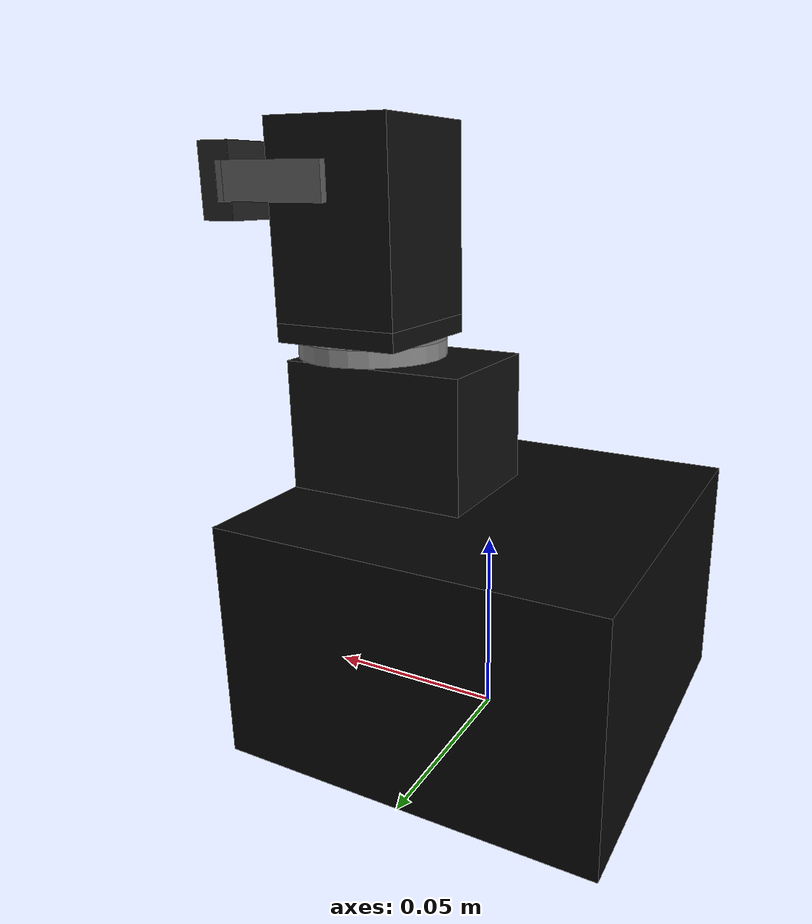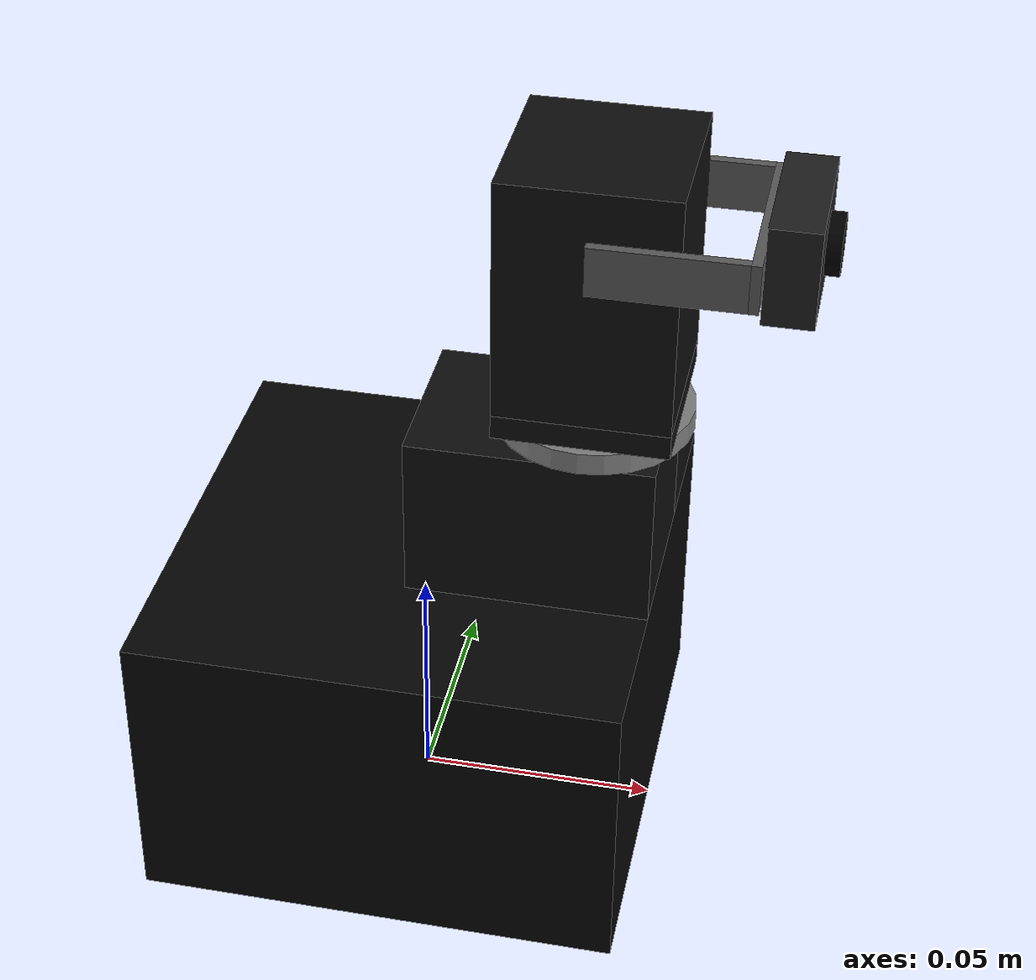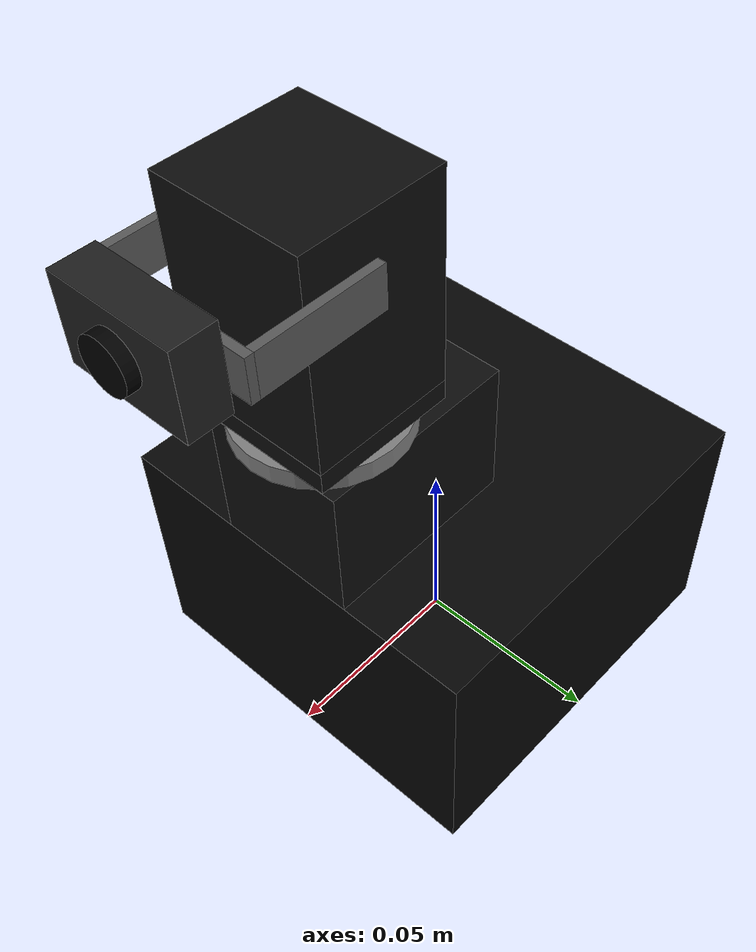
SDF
<?xml version="1.0" ?>
<sdf version="1.10">
  <model name="pantilt">

    <pose>0 0 0 0 0 0</pose>
    <static>false</static>

    <!-- Fix the base to the world so the model doesn't fall under gravity.
         base_link is anchored; pan_joint and tilt_joint still rotate freely. -->
    <joint name="world_fixed" type="fixed">
      <parent>world</parent>
      <child>base_link</child>
    </joint>

    <link name="base_link">
      <inertial>
        <mass>0.6</mass>
        <inertia>
          <ixx>0.000582</ixx><ixy>0</ixy><ixz>0</ixz>
          <iyy>0.000582</iyy><iyz>0</iyz>
          <izz>0.000833</izz>
        </inertia>
      </inertial>

      <!-- Base: 100 x 100 x 63 mm, center at (0, 0, 31.5 mm) -->
      <visual name="base_visual">
        <pose>0 0 0.0315 0 0 0</pose>
        <geometry>
          <box><size>0.100 0.100 0.063</size></box>
        </geometry>
        <material>
          <!-- Glossy black -->
          <ambient>0.02 0.02 0.02 1</ambient>
          <diffuse>0.02 0.02 0.02 1</diffuse>
          <specular>0.8 0.8 0.8 1</specular>
        </material>
      </visual>
      <collision name="base_collision">
        <pose>0 0 0.0315 0 0 0</pose>
        <geometry>
          <box><size>0.100 0.100 0.063</size></box>
        </geometry>
      </collision>

      <!-- Pan servo body: 50(X) x 36(Y) x 35(Z) mm
           Front face flush with base front at X=+50mm → center at X=+25mm
           Sits on top of base: Z center = 63 + 35/2 = 80.5 mm -->
      <visual name="pan_servo_visual">
        <pose>0.025 0 0.0805 0 0 0</pose>
        <geometry>
          <box><size>0.050 0.036 0.035</size></box>
        </geometry>
        <material>
          <!-- Matte black -->
          <ambient>0.05 0.05 0.05 1</ambient>
          <diffuse>0.05 0.05 0.05 1</diffuse>
          <specular>0.08 0.08 0.08 1</specular>
        </material>
      </visual>
      <collision name="pan_servo_collision">
        <pose>0.025 0 0.0805 0 0 0</pose>
        <geometry>
          <box><size>0.050 0.036 0.035</size></box>
        </geometry>
      </collision>
    </link>

    <joint name="pan_joint" type="revolute">
      <pose relative_to="base_link">0.035 0 0.098 0 0 0</pose>
      <parent>base_link</parent>
      <child>pan_link</child>
      <axis>
        <xyz>0 0 1</xyz>
        <limit>
          <lower>-3.14159</lower>
          <upper>3.14159</upper>
        </limit>
        <dynamics>
          <damping>0.05</damping>
        </dynamics>
      </axis>
    </joint>

    <link name="pan_link">
      <pose relative_to="pan_joint">0 0 0 0 0 0</pose>
      <inertial>
        <mass>0.07</mass>
        <inertia>
          <ixx>0.000020</ixx><ixy>0</ixy><ixz>0</ixz>
          <iyy>0.000020</iyy><iyz>0</iyz>
          <izz>0.000012</izz>
        </inertia>
      </inertial>

      <!-- Washer stack: 3 x Ø40mm x 1.5mm = 4.5mm total height
           Modeled as one cylinder sitting directly on the pan horn (Z=0 in link frame).
           Center at Z = +2.25mm -->
      <visual name="washer_visual">
        <pose>0 0 0.00225 0 0 0</pose>
        <geometry>
          <cylinder>
            <radius>0.020</radius>
            <length>0.0045</length>
          </cylinder>
        </geometry>
        <material>
          <!-- Metallic silver -->
          <ambient>0.4 0.4 0.4 1</ambient>
          <diffuse>0.5 0.5 0.5 1</diffuse>
          <specular>0.7 0.7 0.7 1</specular>
        </material>
      </visual>
      <collision name="washer_collision">
        <pose>0 0 0.00225 0 0 0</pose>
        <geometry>
          <cylinder>
            <radius>0.020</radius>
            <length>0.0045</length>
          </cylinder>
        </geometry>
      </collision>

      <!-- Mount bracket: 35(X) x 36(Y) x 5(Z) mm
           Sits on washer stack top (Z=+4.5mm). Center at Z = 4.5 + 2.5 = 7.0mm -->
      <visual name="mount_bracket_visual">
        <pose>0 0 0.0070 0 0 0</pose>
        <geometry>
          <box><size>0.035 0.036 0.005</size></box>
        </geometry>
        <material>
          <!-- Matte black -->
          <ambient>0.05 0.05 0.05 1</ambient>
          <diffuse>0.05 0.05 0.05 1</diffuse>
          <specular>0.08 0.08 0.08 1</specular>
        </material>
      </visual>
      <collision name="mount_bracket_collision">
        <pose>0 0 0.0070 0 0 0</pose>
        <geometry>
          <box><size>0.035 0.036 0.005</size></box>
        </geometry>
      </collision>

      <!-- Tilt servo body: 35(X) x 36(Y) x 50(Z) mm
           Sits on bracket top (Z=+9.5mm). Center at Z = 9.5 + 25 = 34.5mm -->
      <visual name="tilt_servo_visual">
        <pose>0 0 0.0345 0 0 0</pose>
        <geometry>
          <box><size>0.035 0.036 0.050</size></box>
        </geometry>
        <material>
          <!-- Matte black -->
          <ambient>0.05 0.05 0.05 1</ambient>
          <diffuse>0.05 0.05 0.05 1</diffuse>
          <specular>0.08 0.08 0.08 1</specular>
        </material>
      </visual>
      <collision name="tilt_servo_collision">
        <pose>0 0 0.0345 0 0 0</pose>
        <geometry>
          <box><size>0.035 0.036 0.050</size></box>
        </geometry>
      </collision>
    </link>

    <joint name="tilt_joint" type="revolute">
      <pose relative_to="pan_link">0 0 0.0445 0 0 0</pose>
      <parent>pan_link</parent>
      <child>tilt_link</child>
      <axis>
        <xyz>0 1 0</xyz>
        <limit>
          <!-- -90° = camera faces up; +90° = camera faces down -->
          <lower>-1.5708</lower>
          <upper>1.5708</upper>
        </limit>
        <dynamics>
          <damping>0.03</damping>
        </dynamics>
      </axis>
    </joint>

    <link name="tilt_link">
      <pose relative_to="tilt_joint">0 0 0 0 0 0</pose>
      <inertial>
        <mass>0.03</mass>
        <inertia>
          <ixx>0.000005</ixx><ixy>0</ixy><ixz>0</ixz>
          <iyy>0.000008</iyy><iyz>0</iyz>
          <izz>0.000008</izz>
        </inertia>
      </inertial>

      <visual name="u_bracket_arm_left_visual">
        <pose>0.015 0.019 0 0 0 0</pose>
        <geometry>
          <box><size>0.030 0.002 0.010</size></box>
        </geometry>
        <material>
          <!-- Gray bracket -->
          <ambient>0.35 0.35 0.35 1</ambient>
          <diffuse>0.35 0.35 0.35 1</diffuse>
          <specular>0.25 0.25 0.25 1</specular>
        </material>
      </visual>
      <collision name="u_bracket_arm_left_collision">
        <pose>0.015 0.019 0 0 0 0</pose>
        <geometry>
          <box><size>0.030 0.002 0.010</size></box>
        </geometry>
      </collision>

      <!-- U-bracket right arm (-Y side, flush with tilt servo right face at Y=-18mm) -->
      <visual name="u_bracket_arm_right_visual">
        <pose>0.015 -0.019 0 0 0 0</pose>
        <geometry>
          <box><size>0.030 0.002 0.010</size></box>
        </geometry>
        <material>
          <ambient>0.35 0.35 0.35 1</ambient>
          <diffuse>0.35 0.35 0.35 1</diffuse>
          <specular>0.25 0.25 0.25 1</specular>
        </material>
      </visual>
      <collision name="u_bracket_arm_right_collision">
        <pose>0.015 -0.019 0 0 0 0</pose>
        <geometry>
          <box><size>0.030 0.002 0.010</size></box>
        </geometry>
      </collision>

      <visual name="u_bracket_cross_visual">
        <pose>0.031 0 0 0 0 0</pose>
        <geometry>
          <box><size>0.002 0.040 0.010</size></box>
        </geometry>
        <material>
          <ambient>0.35 0.35 0.35 1</ambient>
          <diffuse>0.35 0.35 0.35 1</diffuse>
          <specular>0.25 0.25 0.25 1</specular>
        </material>
      </visual>
      <collision name="u_bracket_cross_collision">
        <pose>0.031 0 0 0 0 0</pose>
        <geometry>
          <box><size>0.002 0.040 0.010</size></box>
        </geometry>
      </collision>

      <!-- Camera body: 10mm(X depth) x 30mm(Y width) x 20mm(Z height)
           Mounted on front face of crosspiece.
           Back face at X = crosspiece_front = 32mm; center at X = 32 + 5 = 37mm -->
      <visual name="camera_body_visual">
        <pose>0.037 0 0 0 0 0</pose>
        <geometry>
          <box><size>0.010 0.030 0.020</size></box>
        </geometry>
        <material>
          <!-- Dark gray camera -->
          <ambient>0.12 0.12 0.12 1</ambient>
          <diffuse>0.12 0.12 0.12 1</diffuse>
          <specular>0.3 0.3 0.3 1</specular>
        </material>
      </visual>
      <collision name="camera_body_collision">
        <pose>0.037 0 0 0 0 0</pose>
        <geometry>
          <box><size>0.010 0.030 0.020</size></box>
        </geometry>
      </collision>

      <!-- Camera lens indicator — small dark cylinder on front face -->
      <visual name="camera_lens_visual">
        <pose>0.043 0 0 0 1.5708 0</pose>
        <geometry>
          <cylinder>
            <radius>0.006</radius>
            <length>0.004</length>
          </cylinder>
        </geometry>
        <material>
          <ambient>0.0 0.0 0.0 1</ambient>
          <diffuse>0.0 0.0 0.0 1</diffuse>
          <specular>0.6 0.6 0.6 1</specular>
        </material>
      </visual>

      <!-- Camera sensor — origin at camera body center, looking in +X -->
      <sensor name="camera" type="camera">
        <pose>0.037 0 0 0 0 0</pose>
        <camera>
          <horizontal_fov>1.047</horizontal_fov>
          <image>
            <width>640</width>
            <height>480</height>
            <format>R8G8B8</format>
          </image>
          <clip>
            <near>0.01</near>
            <far>100</far>
          </clip>
        </camera>
        <always_on>1</always_on>
        <update_rate>30</update_rate>
        <visualize>true</visualize>
      </sensor>
    </link>

    <plugin filename="gz-sim-joint-position-controller-system"
            name="gz::sim::systems::JointPositionController">
      <joint_name>pan_joint</joint_name>
      <p_gain>15</p_gain>
    </plugin>

    <plugin filename="gz-sim-joint-position-controller-system"
            name="gz::sim::systems::JointPositionController">
      <joint_name>tilt_joint</joint_name>
      <p_gain>15</p_gain>
    </plugin>

  </model>
</sdf>
